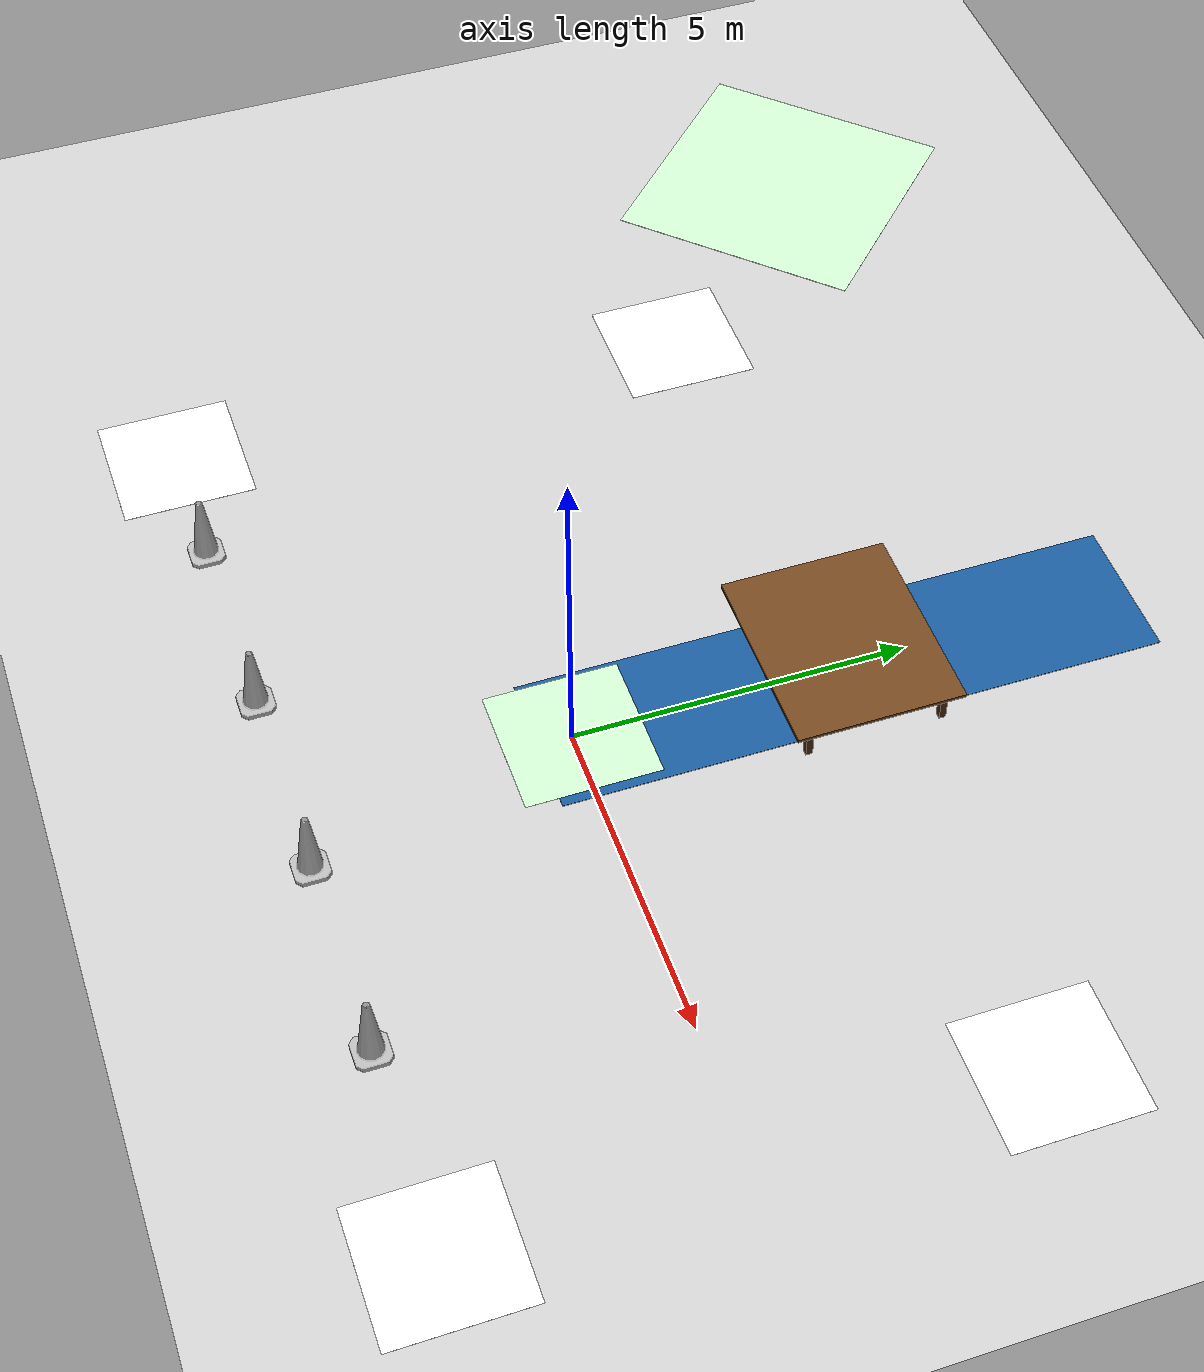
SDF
<?xml version="1.0"?>
<sdf version="1.8">
	<world name="default">
		<physics name="4ms" type="ignored">
			<max_step_size>0.004</max_step_size>
			<real_time_factor>1.0</real_time_factor>
		</physics>
		<plugin filename="gz-sim-physics-system" name="gz::sim::systems::Physics">
		</plugin>
		<plugin filename="gz-sim-user-commands-system" name="gz::sim::systems::UserCommands">
		</plugin>
		<plugin filename="gz-sim-scene-broadcaster-system" name="gz::sim::systems::SceneBroadcaster">
		</plugin>
		<plugin filename="gz-sim-sensors-system" name="gz::sim::systems::Sensors">
			<render_engine>ogre2</render_engine>
		</plugin>

		<scene>
			<grid>false</grid>
		</scene>

		<!--light-->
		<light type="directional" name="sun">
			<cast_shadows>true</cast_shadows>
			<pose>0 0 10 0 0 0</pose>
			<diffuse>0.8 0.8 0.8 1</diffuse>
			<specular>0.2 0.2 0.2 1</specular>
			<attenuation>
				<range>1000</range>
				<constant>0.9</constant>
				<linear>0.01</linear>
				<quadratic>0.001</quadratic>
			</attenuation>
			<direction>-0.5 0.1 -0.9</direction>
		</light>

		<include>
			<uri>model://asphalt_plane</uri>
			<pose>0 0 -0.02 0 0 0</pose>
		</include>

		<include>
			<uri>model://logoJdeRobot</uri>
			<pose>-10 7 0 0 0 -2.35</pose>
		</include>

		<include>
			<uri>model://numbered_pad_1</uri>
			<name>waypoint_1</name>
			<pose>7 -4 0.05 0 0 0</pose>
		</include>
		<include>
			<uri>model://numbered_pad_2</uri>
			<name>waypoint_2</name>
			<pose>-7 -4 0.05 0 0 0</pose>
		</include>
		<include>
			<uri>model://numbered_pad_3</uri>
			<name>waypoint_3</name>
			<pose>-7 4 0.05 0 0 0</pose>
		</include>
		<include>
			<uri>model://numbered_pad_4</uri>
			<name>waypoint_4</name>
			<pose>7 4 0.05 0 0 0</pose>
		</include>

		<include>
			<uri>model://construction_cone</uri>
			<name>cone_1</name>
			<pose>4 -4 0 0 0 0</pose>
			<static>true</static>
		</include>
		<include>
			<uri>model://construction_cone</uri>
			<name>cone_2</name>
			<pose>1 -4 0 0 0 0</pose>
			<static>true</static>
		</include>
		<include>
			<uri>model://construction_cone</uri>
			<name>cone_3</name>
			<pose>-2 -4 0 0 0 0</pose>
			<static>true</static>
		</include>
		<include>
			<uri>model://construction_cone</uri>
			<name>cone_4</name>
			<pose>-5 -4 0 0 0 0</pose>
			<static>true</static>
		</include>

		<model name="bridge_roof">
			<static>true</static>
			<link name="link">
				<collision name="collision">
					<geometry>
						<box>
							<size>3.0 2.5 0.05</size>
						</box>
					</geometry>
				</collision>
				<visual name="visual">
					<geometry>
						<box>
							<size>3.0 2.5 0.05</size>
						</box>
					</geometry>
					<material>
						<ambient>0.45 0.28 0.12 1</ambient>
						<diffuse>0.45 0.28 0.12 1</diffuse>
					</material>
				</visual>
			</link>
			<pose>0 4 0.55 0 0 0</pose>
		</model>
		<model name="bridge_leg_1">
			<static>true</static>
			<link name="link">
				<collision name="collision">
					<geometry>
						<box>
							<size>0.1 0.1 0.55</size>
						</box>
					</geometry>
				</collision>
				<visual name="visual">
					<geometry>
						<box>
							<size>0.1 0.1 0.55</size>
						</box>
					</geometry>
					<material>
						<ambient>0.3 0.18 0.08 1</ambient>
						<diffuse>0.3 0.18 0.08 1</diffuse>
					</material>
				</visual>
			</link>
			<pose>-1.3 3.0 0.275 0 0 0</pose>
		</model>
		<model name="bridge_leg_2">
			<static>true</static>
			<link name="link">
				<collision name="collision">
					<geometry>
						<box>
							<size>0.1 0.1 0.55</size>
						</box>
					</geometry>
				</collision>
				<visual name="visual">
					<geometry>
						<box>
							<size>0.1 0.1 0.55</size>
						</box>
					</geometry>
					<material>
						<ambient>0.3 0.18 0.08 1</ambient>
						<diffuse>0.3 0.18 0.08 1</diffuse>
					</material>
				</visual>
			</link>
			<pose>1.3 3.0 0.275 0 0 0</pose>
		</model>
		<model name="bridge_leg_3">
			<static>true</static>
			<link name="link">
				<collision name="collision">
					<geometry>
						<box>
							<size>0.1 0.1 0.55</size>
						</box>
					</geometry>
				</collision>
				<visual name="visual">
					<geometry>
						<box>
							<size>0.1 0.1 0.55</size>
						</box>
					</geometry>
					<material>
						<ambient>0.3 0.18 0.08 1</ambient>
						<diffuse>0.3 0.18 0.08 1</diffuse>
					</material>
				</visual>
			</link>
			<pose>-1.3 5.0 0.275 0 0 0</pose>
		</model>
		<model name="bridge_leg_4">
			<static>true</static>
			<link name="link">
				<collision name="collision">
					<geometry>
						<box>
							<size>0.1 0.1 0.55</size>
						</box>
					</geometry>
				</collision>
				<visual name="visual">
					<geometry>
						<box>
							<size>0.1 0.1 0.55</size>
						</box>
					</geometry>
					<material>
						<ambient>0.3 0.18 0.08 1</ambient>
						<diffuse>0.3 0.18 0.08 1</diffuse>
					</material>
				</visual>
			</link>
			<pose>1.3 5.0 0.275 0 0 0</pose>
		</model>

		<!-- River strip under the bridge, purely decorative, no collision -->
		<model name="river">
			<static>true</static>
			<link name="link">
				<visual name="visual">
					<geometry>
						<box>
							<size>2.2 9.0 0.01</size>
						</box>
					</geometry>
					<material>
						<ambient>0.1 0.35 0.6 1</ambient>
						<diffuse>0.1 0.35 0.6 1</diffuse>
					</material>
				</visual>
			</link>
			<pose>0 4 0.001 0 0 0</pose>
		</model>

		<!-- Drone takeoff pad, centered over the whole track -->
		<include>
			<uri>model://logoPadGreen</uri>
			<pose>0 0 0.05 0 0 0</pose>
		</include>

	</world>
</sdf>

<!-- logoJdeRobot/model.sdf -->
<sdf version="1.6">
  <model name="logoJdeRobot">
    <static>true</static>
    <link name="link">
      <collision name="collision">
        <geometry>
          <plane>
            <normal>0 0 1</normal>
            <size>1 1</size>
          </plane>
        </geometry>
        <surface>
          <friction>
            <ode>
              <mu>0.5</mu>
              <mu2>.5</mu2>
            </ode>
          </friction>
        </surface>
      </collision>

      <visual name="visual_0">
        <pose>0 0 0.1 0 0 0</pose>

        <cast_shadows>false</cast_shadows>
        <geometry>
          <plane>
            <normal>0 0 1</normal>
            <size>4 4</size>
          </plane>
        </geometry>
        <material>
          <ambient>0.8 1.0 0.8 1.0</ambient>
          <diffuse>0.8 1.0 0.8 1.0</diffuse>
          <specular>0.1 0.1 0.1 1.0</specular>
          <pbr>
            <metal>
              <albedo_map>
                model://logoJdeRobot/materials/textures/logoJdeRobot.png</albedo_map>
            </metal>
          </pbr>
        </material>
      </visual>
    </link>
  </model>
</sdf>

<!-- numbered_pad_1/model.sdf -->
<sdf version='1.6'>
    <model name='numbered_pad_1'>
        <static>true</static>
        <link name='link'>
            <collision name='collision'>
                <geometry>
                    <plane>
                        <normal>0 0 1</normal>
                        <size>2 2</size>
                    </plane>
                </geometry>
                <surface>
                    <friction>
                      <ode>
                        <mu>0.5</mu>
                        <mu2>.5</mu2>
                    </ode>
                  </friction>
                </surface>
            </collision>

            <visual name='visual'>
                <pose>0 0 0.01 0 0 0</pose>
                <cast_shadows>false</cast_shadows>
                <geometry>
                    <plane>
                        <normal>0 0 1</normal>
                        <size>2 2</size>
                    </plane>
                </geometry>
                <material>
                    <ambient>1.0 1.0 1.0 1.0</ambient>
                    <diffuse>1.0 1.0 1.0 1.0</diffuse>
                    <specular>0.1 0.1 0.1 1.0</specular>
                    <pbr>
                        <metal>
                            <albedo_map>model://numbered_pad_1/materials/textures/pad1.png</albedo_map>
                        </metal>
                    </pbr>
                </material>
            </visual>
        </link>
    </model>
</sdf>

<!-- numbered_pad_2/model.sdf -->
<sdf version='1.6'>
    <model name='numbered_pad_2'>
        <static>true</static>
        <link name='link'>
            <collision name='collision'>
                <geometry>
                    <plane>
                        <normal>0 0 1</normal>
                        <size>2 2</size>
                    </plane>
                </geometry>
                <surface>
                    <friction>
                      <ode>
                        <mu>0.5</mu>
                        <mu2>.5</mu2>
                    </ode>
                  </friction>
                </surface>
            </collision>

            <visual name='visual'>
                <pose>0 0 0.01 0 0 0</pose>
                <cast_shadows>false</cast_shadows>
                <geometry>
                    <plane>
                        <normal>0 0 1</normal>
                        <size>2 2</size>
                    </plane>
                </geometry>
                <material>
                    <ambient>1.0 1.0 1.0 1.0</ambient>
                    <diffuse>1.0 1.0 1.0 1.0</diffuse>
                    <specular>0.1 0.1 0.1 1.0</specular>
                    <pbr>
                        <metal>
                            <albedo_map>model://numbered_pad_2/materials/textures/pad2.png</albedo_map>
                        </metal>
                    </pbr>
                </material>
            </visual>
        </link>
    </model>
</sdf>

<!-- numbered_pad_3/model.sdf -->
<sdf version='1.6'>
    <model name='numbered_pad_3'>
        <static>true</static>
        <link name='link'>
            <collision name='collision'>
                <geometry>
                    <plane>
                        <normal>0 0 1</normal>
                        <size>2 2</size>
                    </plane>
                </geometry>
                <surface>
                    <friction>
                      <ode>
                        <mu>0.5</mu>
                        <mu2>.5</mu2>
                    </ode>
                  </friction>
                </surface>
            </collision>

            <visual name='visual'>
                <pose>0 0 0.01 0 0 0</pose>
                <cast_shadows>false</cast_shadows>
                <geometry>
                    <plane>
                        <normal>0 0 1</normal>
                        <size>2 2</size>
                    </plane>
                </geometry>
                <material>
                    <ambient>1.0 1.0 1.0 1.0</ambient>
                    <diffuse>1.0 1.0 1.0 1.0</diffuse>
                    <specular>0.1 0.1 0.1 1.0</specular>
                    <pbr>
                        <metal>
                            <albedo_map>model://numbered_pad_3/materials/textures/pad3.png</albedo_map>
                        </metal>
                    </pbr>
                </material>
            </visual>
        </link>
    </model>
</sdf>

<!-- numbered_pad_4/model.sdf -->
<sdf version='1.6'>
    <model name='numbered_pad_4'>
        <static>true</static>
        <link name='link'>
            <collision name='collision'>
                <geometry>
                    <plane>
                        <normal>0 0 1</normal>
                        <size>2 2</size>
                    </plane>
                </geometry>
                <surface>
                    <friction>
                      <ode>
                        <mu>0.5</mu>
                        <mu2>.5</mu2>
                    </ode>
                  </friction>
                </surface>
            </collision>

            <visual name='visual'>
                <pose>0 0 0.01 0 0 0</pose>
                <cast_shadows>false</cast_shadows>
                <geometry>
                    <plane>
                        <normal>0 0 1</normal>
                        <size>2 2</size>
                    </plane>
                </geometry>
                <material>
                    <ambient>1.0 1.0 1.0 1.0</ambient>
                    <diffuse>1.0 1.0 1.0 1.0</diffuse>
                    <specular>0.1 0.1 0.1 1.0</specular>
                    <pbr>
                        <metal>
                            <albedo_map>model://numbered_pad_4/materials/textures/pad4.png</albedo_map>
                        </metal>
                    </pbr>
                </material>
            </visual>
        </link>
    </model>
</sdf>

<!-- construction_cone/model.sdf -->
<sdf version="1.5">
  <model name="Construction Cone">
    <link name="link">
      <collision name="collision">
        <geometry>
          <mesh>
            <scale>10 10 10</scale>
            <uri>file://isr-testbed/construction_cone/meshes/construction_cone.dae</uri>
          </mesh>
        </geometry>
      </collision>
      <visual name="visual">
        <geometry>
          <mesh>
            <scale>10 10 10</scale>
            <uri>file://isr-testbed/construction_cone/meshes/construction_cone.dae</uri>
          </mesh>
        </geometry>
      </visual>
    </link>
  </model>
</sdf>

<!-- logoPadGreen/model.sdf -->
<sdf version='1.6'>
    <model name='logoPadGreen'>
        <static>true</static>
        <link name='link'>
            <collision name='collision'>
                <geometry>
                    <plane>
                        <normal>0 0 1</normal>
                        <size>2 2</size>
                    </plane>
                </geometry>
                <surface>
                    <friction>
                      <ode>
                        <mu>0.5</mu>
                        <mu2>.5</mu2>
                    </ode>
                  </friction>
                </surface>
            </collision>

            <visual name='visual'>
                <pose>0 0 0.01 0 0 0</pose>

                <cast_shadows>false</cast_shadows>
                <geometry>
                    <plane>
                        <normal>0 0 1</normal>
                        <size>2 2</size>
                    </plane>
                </geometry>
                    <material>
                        <ambient>0.8 1.0 0.8 1.0</ambient>
                        <diffuse>0.8 1.0 0.8 1.0</diffuse>
                        <specular>0.1 0.1 0.1 1.0</specular>
                        <pbr>
                            <metal>
                                <albedo_map>model://logoPadGreen/materials/textures/start_pad.png</albedo_map>
                            </metal>
                        </pbr>
                    </material>
            </visual>
        </link>
    </model>
</sdf>
